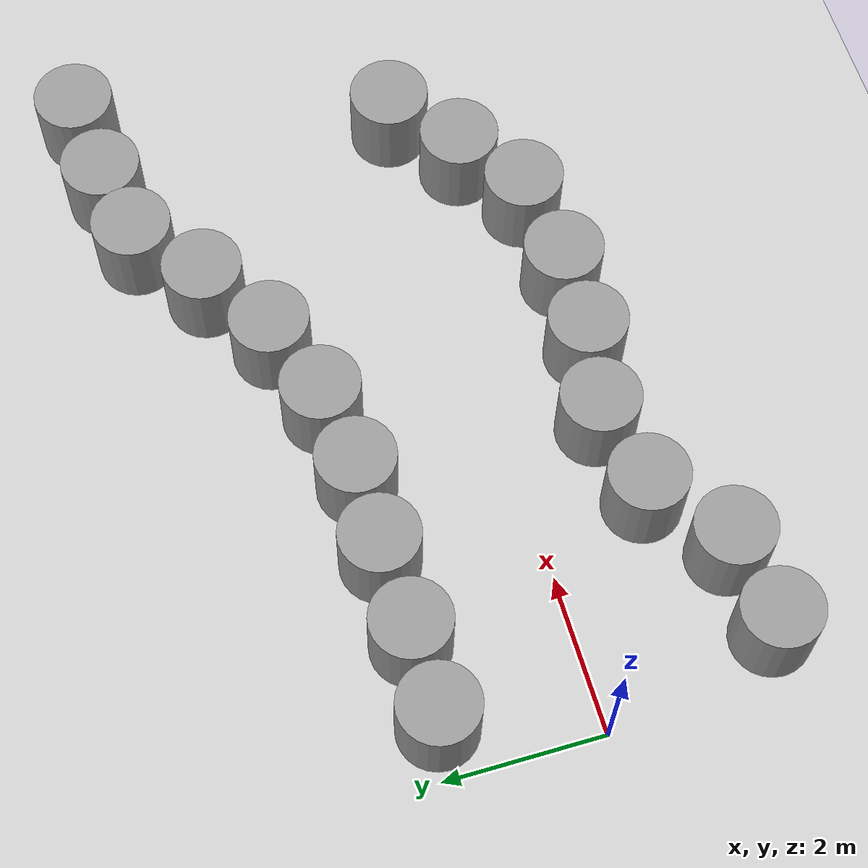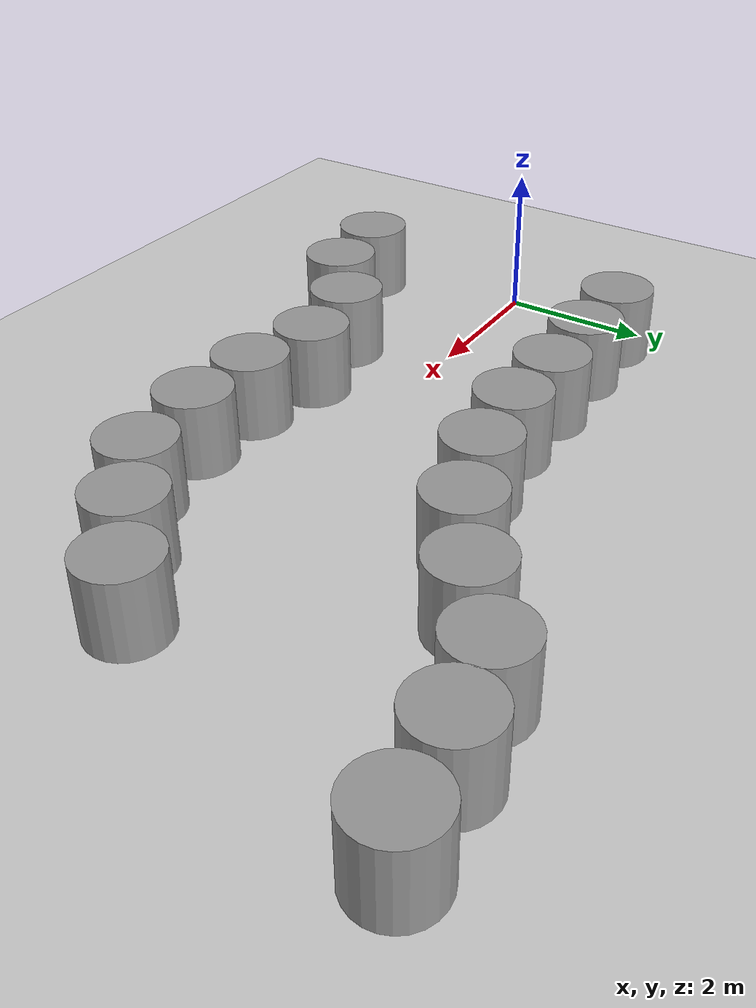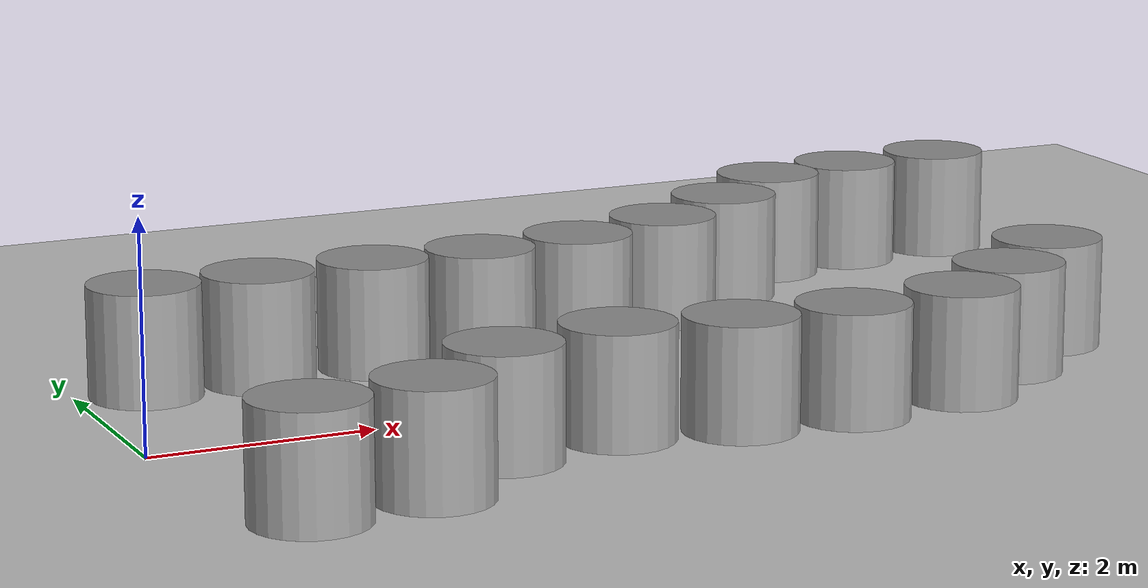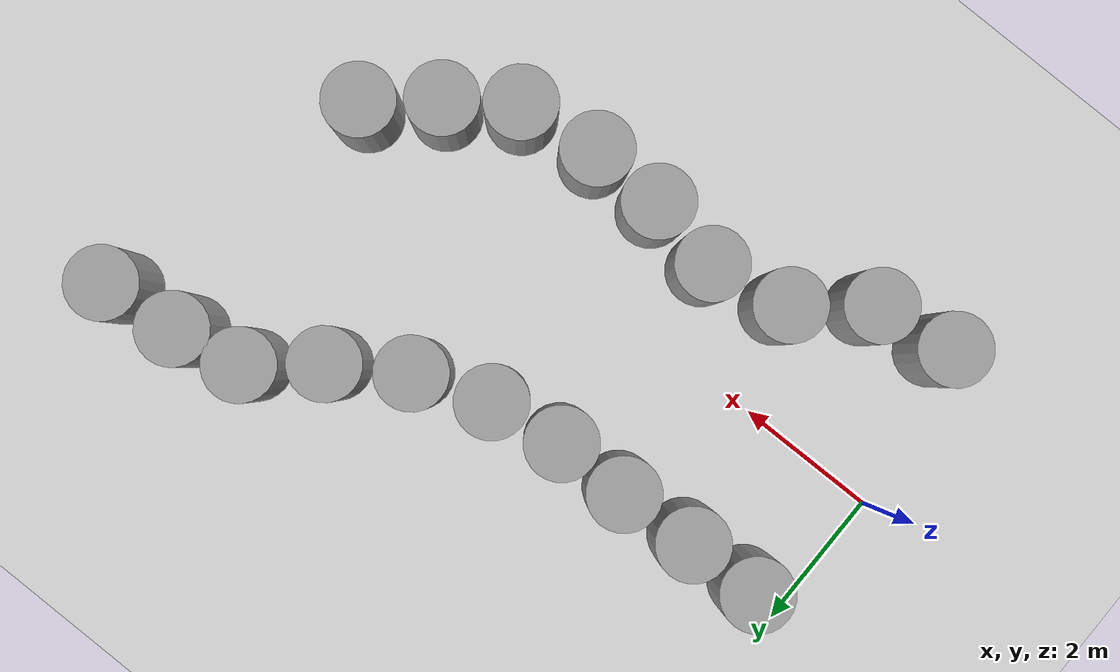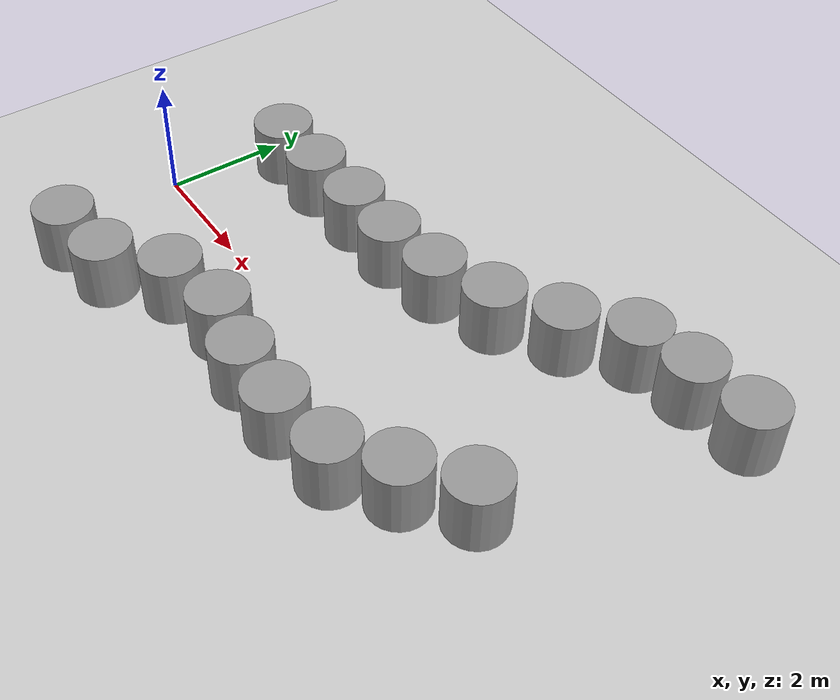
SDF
<sdf version="1.7">
 <world name="default">
  <model name="ground_plane">
   <static>1</static>
   <link name="link">
    <collision name="collision">
     <geometry><plane><normal>0 0 1</normal><size>100 100</size></plane></geometry>
     <surface>
      <contact><collide_bitmask>65535</collide_bitmask></contact>
      <friction><ode><mu>100</mu><mu2>50</mu2></ode></friction>
     </surface>
    </collision>
    <visual name="visual">
     <cast_shadows>0</cast_shadows>
     <geometry><plane><normal>0 0 1</normal><size>100 100</size></plane></geometry>
     <material>
      <script><uri>file://media/materials/scripts/gazebo.material</uri><name>Gazebo/Grey</name></script>
     </material>
    </visual>
   </link>
  </model>
  <model name="gasse_zylinder">
   <link name="link_0">
    <inertial>
     <mass>1</mass>
     <inertia><ixx>0.145833</ixx><ixy>0</ixy><ixz>0</ixz><iyy>0.145833</iyy><iyz>0</iyz><izz>0.125</izz></inertia>
    </inertial>
    <pose>-9.35991 0.82655 0 0 -0 0</pose>
    <visual name="visual">
     <geometry><cylinder><radius>0.5</radius><length>1</length></cylinder></geometry>
     <material>
      <lighting>1</lighting>
      <script><uri>file://media/materials/scripts/gazebo.material</uri><name>Gazebo/Grey</name></script>
      <shader type="pixel"/>
     </material>
    </visual>
    <collision name="collision">
     <geometry><cylinder><radius>0.5</radius><length>1</length></cylinder></geometry>
     <surface>
      <friction>
       <ode><mu>1</mu><mu2>1</mu2><fdir1>0 0 0</fdir1><slip1>0</slip1><slip2>0</slip2></ode>
       <torsional>
        <coefficient>1</coefficient>
        <patch_radius>0</patch_radius>
        <surface_radius>0</surface_radius>
        <use_patch_radius>1</use_patch_radius>
        <ode><slip>0</slip></ode>
       </torsional>
      </friction>
      <bounce><restitution_coefficient>0</restitution_coefficient><threshold>1e+06</threshold></bounce>
      <contact>
       <collide_without_contact>0</collide_without_contact>
       <collide_without_contact_bitmask>1</collide_without_contact_bitmask>
       <collide_bitmask>1</collide_bitmask>
       <ode>
        <soft_cfm>0</soft_cfm>
        <soft_erp>0.2</soft_erp>
        <kp>1e+13</kp>
        <kd>1</kd>
        <max_vel>0.01</max_vel>
        <min_depth>0</min_depth>
       </ode>
       <bullet>
        <split_impulse>1</split_impulse>
        <split_impulse_penetration_threshold>-0.01</split_impulse_penetration_threshold>
        <soft_cfm>0</soft_cfm>
        <soft_erp>0.2</soft_erp>
        <kp>1e+13</kp>
        <kd>1</kd>
       </bullet>
      </contact>
     </surface>
    </collision>
   </link>
   <link name="link_1">
    <inertial>
     <mass>1</mass>
     <inertia><ixx>0.145833</ixx><ixy>0</ixy><ixz>0</ixz><iyy>0.145833</iyy><iyz>0</iyz><izz>0.125</izz></inertia>
    </inertial>
    <pose>-8.31745 0.842697 0 0 -0 0</pose>
    <visual name="visual">
     <geometry><cylinder><radius>0.5</radius><length>1</length></cylinder></geometry>
     <material>
      <lighting>1</lighting>
      <script><uri>file://media/materials/scripts/gazebo.material</uri><name>Gazebo/Grey</name></script>
      <shader type="pixel"/>
     </material>
    </visual>
    <collision name="collision">
     <geometry><cylinder><radius>0.5</radius><length>1</length></cylinder></geometry>
     <surface>
      <friction>
       <ode><mu>1</mu><mu2>1</mu2><fdir1>0 0 0</fdir1><slip1>0</slip1><slip2>0</slip2></ode>
       <torsional>
        <coefficient>1</coefficient>
        <patch_radius>0</patch_radius>
        <surface_radius>0</surface_radius>
        <use_patch_radius>1</use_patch_radius>
        <ode><slip>0</slip></ode>
       </torsional>
      </friction>
      <bounce><restitution_coefficient>0</restitution_coefficient><threshold>1e+06</threshold></bounce>
      <contact>
       <collide_without_contact>0</collide_without_contact>
       <collide_without_contact_bitmask>1</collide_without_contact_bitmask>
       <collide_bitmask>1</collide_bitmask>
       <ode>
        <soft_cfm>0</soft_cfm>
        <soft_erp>0.2</soft_erp>
        <kp>1e+13</kp>
        <kd>1</kd>
        <max_vel>0.01</max_vel>
        <min_depth>0</min_depth>
       </ode>
       <bullet>
        <split_impulse>1</split_impulse>
        <split_impulse_penetration_threshold>-0.01</split_impulse_penetration_threshold>
        <soft_cfm>0</soft_cfm>
        <soft_erp>0.2</soft_erp>
        <kp>1e+13</kp>
        <kd>1</kd>
       </bullet>
      </contact>
     </surface>
    </collision>
   </link>
   <link name="link_12">
    <inertial>
     <mass>1</mass>
     <inertia><ixx>0.145833</ixx><ixy>0</ixy><ixz>0</ixz><iyy>0.145833</iyy><iyz>0</iyz><izz>0.125</izz></inertia>
    </inertial>
    <pose>-9.37316 -3.22378 0 0 -0 0</pose>
    <visual name="visual">
     <geometry><cylinder><radius>0.5</radius><length>1</length></cylinder></geometry>
     <material>
      <lighting>1</lighting>
      <script><uri>file://media/materials/scripts/gazebo.material</uri><name>Gazebo/Grey</name></script>
      <shader type="pixel"/>
     </material>
    </visual>
    <collision name="collision">
     <geometry><cylinder><radius>0.5</radius><length>1</length></cylinder></geometry>
     <surface>
      <friction>
       <ode><mu>1</mu><mu2>1</mu2><fdir1>0 0 0</fdir1><slip1>0</slip1><slip2>0</slip2></ode>
       <torsional>
        <coefficient>1</coefficient>
        <patch_radius>0</patch_radius>
        <surface_radius>0</surface_radius>
        <use_patch_radius>1</use_patch_radius>
        <ode><slip>0</slip></ode>
       </torsional>
      </friction>
      <bounce><restitution_coefficient>0</restitution_coefficient><threshold>1e+06</threshold></bounce>
      <contact>
       <collide_without_contact>0</collide_without_contact>
       <collide_without_contact_bitmask>1</collide_without_contact_bitmask>
       <collide_bitmask>1</collide_bitmask>
       <ode>
        <soft_cfm>0</soft_cfm>
        <soft_erp>0.2</soft_erp>
        <kp>1e+13</kp>
        <kd>1</kd>
        <max_vel>0.01</max_vel>
        <min_depth>0</min_depth>
       </ode>
       <bullet>
        <split_impulse>1</split_impulse>
        <split_impulse_penetration_threshold>-0.01</split_impulse_penetration_threshold>
        <soft_cfm>0</soft_cfm>
        <soft_erp>0.2</soft_erp>
        <kp>1e+13</kp>
        <kd>1</kd>
       </bullet>
      </contact>
     </surface>
    </collision>
   </link>
   <link name="link_13">
    <inertial>
     <mass>1</mass>
     <inertia><ixx>0.145833</ixx><ixy>0</ixy><ixz>0</ixz><iyy>0.145833</iyy><iyz>0</iyz><izz>0.125</izz></inertia>
    </inertial>
    <pose>-8.28443 -3.06836 0 0 -0 0</pose>
    <visual name="visual">
     <geometry><cylinder><radius>0.5</radius><length>1</length></cylinder></geometry>
     <material>
      <lighting>1</lighting>
      <script><uri>file://media/materials/scripts/gazebo.material</uri><name>Gazebo/Grey</name></script>
      <shader type="pixel"/>
     </material>
    </visual>
    <collision name="collision">
     <geometry><cylinder><radius>0.5</radius><length>1</length></cylinder></geometry>
     <surface>
      <friction>
       <ode><mu>1</mu><mu2>1</mu2><fdir1>0 0 0</fdir1><slip1>0</slip1><slip2>0</slip2></ode>
       <torsional>
        <coefficient>1</coefficient>
        <patch_radius>0</patch_radius>
        <surface_radius>0</surface_radius>
        <use_patch_radius>1</use_patch_radius>
        <ode><slip>0</slip></ode>
       </torsional>
      </friction>
      <bounce><restitution_coefficient>0</restitution_coefficient><threshold>1e+06</threshold></bounce>
      <contact>
       <collide_without_contact>0</collide_without_contact>
       <collide_without_contact_bitmask>1</collide_without_contact_bitmask>
       <collide_bitmask>1</collide_bitmask>
       <ode>
        <soft_cfm>0</soft_cfm>
        <soft_erp>0.2</soft_erp>
        <kp>1e+13</kp>
        <kd>1</kd>
        <max_vel>0.01</max_vel>
        <min_depth>0</min_depth>
       </ode>
       <bullet>
        <split_impulse>1</split_impulse>
        <split_impulse_penetration_threshold>-0.01</split_impulse_penetration_threshold>
        <soft_cfm>0</soft_cfm>
        <soft_erp>0.2</soft_erp>
        <kp>1e+13</kp>
        <kd>1</kd>
       </bullet>
      </contact>
     </surface>
    </collision>
   </link>
   <link name="link_14">
    <inertial>
     <mass>1</mass>
     <inertia><ixx>0.145833</ixx><ixy>0</ixy><ixz>0</ixz><iyy>0.145833</iyy><iyz>0</iyz><izz>0.125</izz></inertia>
    </inertial>
    <pose>-7.3678 -2.33615 0 0 -0 0</pose>
    <visual name="visual">
     <geometry><cylinder><radius>0.5</radius><length>1</length></cylinder></geometry>
     <material>
      <lighting>1</lighting>
      <script><uri>file://media/materials/scripts/gazebo.material</uri><name>Gazebo/Grey</name></script>
      <shader type="pixel"/>
     </material>
    </visual>
    <collision name="collision">
     <geometry><cylinder><radius>0.5</radius><length>1</length></cylinder></geometry>
     <surface>
      <friction>
       <ode><mu>1</mu><mu2>1</mu2><fdir1>0 0 0</fdir1><slip1>0</slip1><slip2>0</slip2></ode>
       <torsional>
        <coefficient>1</coefficient>
        <patch_radius>0</patch_radius>
        <surface_radius>0</surface_radius>
        <use_patch_radius>1</use_patch_radius>
        <ode><slip>0</slip></ode>
       </torsional>
      </friction>
      <bounce><restitution_coefficient>0</restitution_coefficient><threshold>1e+06</threshold></bounce>
      <contact>
       <collide_without_contact>0</collide_without_contact>
       <collide_without_contact_bitmask>1</collide_without_contact_bitmask>
       <collide_bitmask>1</collide_bitmask>
       <ode>
        <soft_cfm>0</soft_cfm>
        <soft_erp>0.2</soft_erp>
        <kp>1e+13</kp>
        <kd>1</kd>
        <max_vel>0.01</max_vel>
        <min_depth>0</min_depth>
       </ode>
       <bullet>
        <split_impulse>1</split_impulse>
        <split_impulse_penetration_threshold>-0.01</split_impulse_penetration_threshold>
        <soft_cfm>0</soft_cfm>
        <soft_erp>0.2</soft_erp>
        <kp>1e+13</kp>
        <kd>1</kd>
       </bullet>
      </contact>
     </surface>
    </collision>
   </link>
   <link name="link_15">
    <inertial>
     <mass>1</mass>
     <inertia><ixx>0.145833</ixx><ixy>0</ixy><ixz>0</ixz><iyy>0.145833</iyy><iyz>0</iyz><izz>0.125</izz></inertia>
    </inertial>
    <pose>-6.25209 -2.12005 0 0 -0 0</pose>
    <visual name="visual">
     <geometry><cylinder><radius>0.5</radius><length>1</length></cylinder></geometry>
     <material>
      <lighting>1</lighting>
      <script><uri>file://media/materials/scripts/gazebo.material</uri><name>Gazebo/Grey</name></script>
      <shader type="pixel"/>
     </material>
    </visual>
    <collision name="collision">
     <geometry><cylinder><radius>0.5</radius><length>1</length></cylinder></geometry>
     <surface>
      <friction>
       <ode><mu>1</mu><mu2>1</mu2><fdir1>0 0 0</fdir1><slip1>0</slip1><slip2>0</slip2></ode>
       <torsional>
        <coefficient>1</coefficient>
        <patch_radius>0</patch_radius>
        <surface_radius>0</surface_radius>
        <use_patch_radius>1</use_patch_radius>
        <ode><slip>0</slip></ode>
       </torsional>
      </friction>
      <bounce><restitution_coefficient>0</restitution_coefficient><threshold>1e+06</threshold></bounce>
      <contact>
       <collide_without_contact>0</collide_without_contact>
       <collide_without_contact_bitmask>1</collide_without_contact_bitmask>
       <collide_bitmask>1</collide_bitmask>
       <ode>
        <soft_cfm>0</soft_cfm>
        <soft_erp>0.2</soft_erp>
        <kp>1e+13</kp>
        <kd>1</kd>
        <max_vel>0.01</max_vel>
        <min_depth>0</min_depth>
       </ode>
       <bullet>
        <split_impulse>1</split_impulse>
        <split_impulse_penetration_threshold>-0.01</split_impulse_penetration_threshold>
        <soft_cfm>0</soft_cfm>
        <soft_erp>0.2</soft_erp>
        <kp>1e+13</kp>
        <kd>1</kd>
       </bullet>
      </contact>
     </surface>
    </collision>
   </link>
   <link name="link_16">
    <inertial>
     <mass>1</mass>
     <inertia><ixx>0.145833</ixx><ixy>0</ixy><ixz>0</ixz><iyy>0.145833</iyy><iyz>0</iyz><izz>0.125</izz></inertia>
    </inertial>
    <pose>-5.21227 -2.31195 0 0 -0 0</pose>
    <visual name="visual">
     <geometry><cylinder><radius>0.5</radius><length>1</length></cylinder></geometry>
     <material>
      <lighting>1</lighting>
      <script><uri>file://media/materials/scripts/gazebo.material</uri><name>Gazebo/Grey</name></script>
      <shader type="pixel"/>
     </material>
    </visual>
    <collision name="collision">
     <geometry><cylinder><radius>0.5</radius><length>1</length></cylinder></geometry>
     <surface>
      <friction>
       <ode><mu>1</mu><mu2>1</mu2><fdir1>0 0 0</fdir1><slip1>0</slip1><slip2>0</slip2></ode>
       <torsional>
        <coefficient>1</coefficient>
        <patch_radius>0</patch_radius>
        <surface_radius>0</surface_radius>
        <use_patch_radius>1</use_patch_radius>
        <ode><slip>0</slip></ode>
       </torsional>
      </friction>
      <bounce><restitution_coefficient>0</restitution_coefficient><threshold>1e+06</threshold></bounce>
      <contact>
       <collide_without_contact>0</collide_without_contact>
       <collide_without_contact_bitmask>1</collide_without_contact_bitmask>
       <collide_bitmask>1</collide_bitmask>
       <ode>
        <soft_cfm>0</soft_cfm>
        <soft_erp>0.2</soft_erp>
        <kp>1e+13</kp>
        <kd>1</kd>
        <max_vel>0.01</max_vel>
        <min_depth>0</min_depth>
       </ode>
       <bullet>
        <split_impulse>1</split_impulse>
        <split_impulse_penetration_threshold>-0.01</split_impulse_penetration_threshold>
        <soft_cfm>0</soft_cfm>
        <soft_erp>0.2</soft_erp>
        <kp>1e+13</kp>
        <kd>1</kd>
       </bullet>
      </contact>
     </surface>
    </collision>
   </link>
   <link name="link_17">
    <inertial>
     <mass>1</mass>
     <inertia><ixx>0.145833</ixx><ixy>0</ixy><ixz>0</ixz><iyy>0.145833</iyy><iyz>0</iyz><izz>0.125</izz></inertia>
    </inertial>
    <pose>-4.16804 -2.34618 0 0 -0 0</pose>
    <visual name="visual">
     <geometry><cylinder><radius>0.5</radius><length>1</length></cylinder></geometry>
     <material>
      <lighting>1</lighting>
      <script><uri>file://media/materials/scripts/gazebo.material</uri><name>Gazebo/Grey</name></script>
      <shader type="pixel"/>
     </material>
    </visual>
    <collision name="collision">
     <geometry><cylinder><radius>0.5</radius><length>1</length></cylinder></geometry>
     <surface>
      <friction>
       <ode><mu>1</mu><mu2>1</mu2><fdir1>0 0 0</fdir1><slip1>0</slip1><slip2>0</slip2></ode>
       <torsional>
        <coefficient>1</coefficient>
        <patch_radius>0</patch_radius>
        <surface_radius>0</surface_radius>
        <use_patch_radius>1</use_patch_radius>
        <ode><slip>0</slip></ode>
       </torsional>
      </friction>
      <bounce><restitution_coefficient>0</restitution_coefficient><threshold>1e+06</threshold></bounce>
      <contact>
       <collide_without_contact>0</collide_without_contact>
       <collide_without_contact_bitmask>1</collide_without_contact_bitmask>
       <collide_bitmask>1</collide_bitmask>
       <ode>
        <soft_cfm>0</soft_cfm>
        <soft_erp>0.2</soft_erp>
        <kp>1e+13</kp>
        <kd>1</kd>
        <max_vel>0.01</max_vel>
        <min_depth>0</min_depth>
       </ode>
       <bullet>
        <split_impulse>1</split_impulse>
        <split_impulse_penetration_threshold>-0.01</split_impulse_penetration_threshold>
        <soft_cfm>0</soft_cfm>
        <soft_erp>0.2</soft_erp>
        <kp>1e+13</kp>
        <kd>1</kd>
       </bullet>
      </contact>
     </surface>
    </collision>
   </link>
   <link name="link_18">
    <inertial>
     <mass>1</mass>
     <inertia><ixx>0.145833</ixx><ixy>0</ixy><ixz>0</ixz><iyy>0.145833</iyy><iyz>0</iyz><izz>0.125</izz></inertia>
    </inertial>
    <pose>-3.02576 -2.19398 0 0 -0 0</pose>
    <visual name="visual">
     <geometry><cylinder><radius>0.5</radius><length>1</length></cylinder></geometry>
     <material>
      <lighting>1</lighting>
      <script><uri>file://media/materials/scripts/gazebo.material</uri><name>Gazebo/Grey</name></script>
      <shader type="pixel"/>
     </material>
    </visual>
    <collision name="collision">
     <geometry><cylinder><radius>0.5</radius><length>1</length></cylinder></geometry>
     <surface>
      <friction>
       <ode><mu>1</mu><mu2>1</mu2><fdir1>0 0 0</fdir1><slip1>0</slip1><slip2>0</slip2></ode>
       <torsional>
        <coefficient>1</coefficient>
        <patch_radius>0</patch_radius>
        <surface_radius>0</surface_radius>
        <use_patch_radius>1</use_patch_radius>
        <ode><slip>0</slip></ode>
       </torsional>
      </friction>
      <bounce><restitution_coefficient>0</restitution_coefficient><threshold>1e+06</threshold></bounce>
      <contact>
       <collide_without_contact>0</collide_without_contact>
       <collide_without_contact_bitmask>1</collide_without_contact_bitmask>
       <collide_bitmask>1</collide_bitmask>
       <ode>
        <soft_cfm>0</soft_cfm>
        <soft_erp>0.2</soft_erp>
        <kp>1e+13</kp>
        <kd>1</kd>
        <max_vel>0.01</max_vel>
        <min_depth>0</min_depth>
       </ode>
       <bullet>
        <split_impulse>1</split_impulse>
        <split_impulse_penetration_threshold>-0.01</split_impulse_penetration_threshold>
        <soft_cfm>0</soft_cfm>
        <soft_erp>0.2</soft_erp>
        <kp>1e+13</kp>
        <kd>1</kd>
       </bullet>
      </contact>
     </surface>
    </collision>
   </link>
   <link name="link_19">
    <inertial>
     <mass>1</mass>
     <inertia><ixx>0.145833</ixx><ixy>0</ixy><ixz>0</ixz><iyy>0.145833</iyy><iyz>0</iyz><izz>0.125</izz></inertia>
    </inertial>
    <pose>-2.19618 -1.59246 0 0 -0 0</pose>
    <visual name="visual">
     <geometry><cylinder><radius>0.5</radius><length>1</length></cylinder></geometry>
     <material>
      <lighting>1</lighting>
      <script><uri>file://media/materials/scripts/gazebo.material</uri><name>Gazebo/Grey</name></script>
      <shader type="pixel"/>
     </material>
    </visual>
    <collision name="collision">
     <geometry><cylinder><radius>0.5</radius><length>1</length></cylinder></geometry>
     <surface>
      <friction>
       <ode><mu>1</mu><mu2>1</mu2><fdir1>0 0 0</fdir1><slip1>0</slip1><slip2>0</slip2></ode>
       <torsional>
        <coefficient>1</coefficient>
        <patch_radius>0</patch_radius>
        <surface_radius>0</surface_radius>
        <use_patch_radius>1</use_patch_radius>
        <ode><slip>0</slip></ode>
       </torsional>
      </friction>
      <bounce><restitution_coefficient>0</restitution_coefficient><threshold>1e+06</threshold></bounce>
      <contact>
       <collide_without_contact>0</collide_without_contact>
       <collide_without_contact_bitmask>1</collide_without_contact_bitmask>
       <collide_bitmask>1</collide_bitmask>
       <ode>
        <soft_cfm>0</soft_cfm>
        <soft_erp>0.2</soft_erp>
        <kp>1e+13</kp>
        <kd>1</kd>
        <max_vel>0.01</max_vel>
        <min_depth>0</min_depth>
       </ode>
       <bullet>
        <split_impulse>1</split_impulse>
        <split_impulse_penetration_threshold>-0.01</split_impulse_penetration_threshold>
        <soft_cfm>0</soft_cfm>
        <soft_erp>0.2</soft_erp>
        <kp>1e+13</kp>
        <kd>1</kd>
       </bullet>
      </contact>
     </surface>
    </collision>
   </link>
   <link name="link_2">
    <inertial>
     <mass>1</mass>
     <inertia><ixx>0.145833</ixx><ixy>0</ixy><ixz>0</ixz><iyy>0.145833</iyy><iyz>0</iyz><izz>0.125</izz></inertia>
    </inertial>
    <pose>-7.22171 0.898803 0 0 -0 0</pose>
    <visual name="visual">
     <geometry><cylinder><radius>0.5</radius><length>1</length></cylinder></geometry>
     <material>
      <lighting>1</lighting>
      <script><uri>file://media/materials/scripts/gazebo.material</uri><name>Gazebo/Grey</name></script>
      <shader type="pixel"/>
     </material>
    </visual>
    <collision name="collision">
     <geometry><cylinder><radius>0.5</radius><length>1</length></cylinder></geometry>
     <surface>
      <friction>
       <ode><mu>1</mu><mu2>1</mu2><fdir1>0 0 0</fdir1><slip1>0</slip1><slip2>0</slip2></ode>
       <torsional>
        <coefficient>1</coefficient>
        <patch_radius>0</patch_radius>
        <surface_radius>0</surface_radius>
        <use_patch_radius>1</use_patch_radius>
        <ode><slip>0</slip></ode>
       </torsional>
      </friction>
      <bounce><restitution_coefficient>0</restitution_coefficient><threshold>1e+06</threshold></bounce>
      <contact>
       <collide_without_contact>0</collide_without_contact>
       <collide_without_contact_bitmask>1</collide_without_contact_bitmask>
       <collide_bitmask>1</collide_bitmask>
       <ode>
        <soft_cfm>0</soft_cfm>
        <soft_erp>0.2</soft_erp>
        <kp>1e+13</kp>
        <kd>1</kd>
        <max_vel>0.01</max_vel>
        <min_depth>0</min_depth>
       </ode>
       <bullet>
        <split_impulse>1</split_impulse>
        <split_impulse_penetration_threshold>-0.01</split_impulse_penetration_threshold>
        <soft_cfm>0</soft_cfm>
        <soft_erp>0.2</soft_erp>
        <kp>1e+13</kp>
        <kd>1</kd>
       </bullet>
      </contact>
     </surface>
    </collision>
   </link>
   <link name="link_20">
    <inertial>
     <mass>1</mass>
     <inertia><ixx>0.145833</ixx><ixy>0</ixy><ixz>0</ixz><iyy>0.145833</iyy><iyz>0</iyz><izz>0.125</izz></inertia>
    </inertial>
    <pose>-1.37016 -0.900286 0 0 -0 0</pose>
    <visual name="visual">
     <geometry><cylinder><radius>0.5</radius><length>1</length></cylinder></geometry>
     <material>
      <lighting>1</lighting>
      <script><uri>file://media/materials/scripts/gazebo.material</uri><name>Gazebo/Grey</name></script>
      <shader type="pixel"/>
     </material>
    </visual>
    <collision name="collision">
     <geometry><cylinder><radius>0.5</radius><length>1</length></cylinder></geometry>
     <surface>
      <friction>
       <ode><mu>1</mu><mu2>1</mu2><fdir1>0 0 0</fdir1><slip1>0</slip1><slip2>0</slip2></ode>
       <torsional>
        <coefficient>1</coefficient>
        <patch_radius>0</patch_radius>
        <surface_radius>0</surface_radius>
        <use_patch_radius>1</use_patch_radius>
        <ode><slip>0</slip></ode>
       </torsional>
      </friction>
      <bounce><restitution_coefficient>0</restitution_coefficient><threshold>1e+06</threshold></bounce>
      <contact>
       <collide_without_contact>0</collide_without_contact>
       <collide_without_contact_bitmask>1</collide_without_contact_bitmask>
       <collide_bitmask>1</collide_bitmask>
       <ode>
        <soft_cfm>0</soft_cfm>
        <soft_erp>0.2</soft_erp>
        <kp>1e+13</kp>
        <kd>1</kd>
        <max_vel>0.01</max_vel>
        <min_depth>0</min_depth>
       </ode>
       <bullet>
        <split_impulse>1</split_impulse>
        <split_impulse_penetration_threshold>-0.01</split_impulse_penetration_threshold>
        <soft_cfm>0</soft_cfm>
        <soft_erp>0.2</soft_erp>
        <kp>1e+13</kp>
        <kd>1</kd>
       </bullet>
      </contact>
     </surface>
    </collision>
   </link>
   <link name="link_3">
    <inertial>
     <mass>1</mass>
     <inertia><ixx>0.145833</ixx><ixy>0</ixy><ixz>0</ixz><iyy>0.145833</iyy><iyz>0</iyz><izz>0.125</izz></inertia>
    </inertial>
    <pose>-6.19151 0.896374 0 0 -0 0</pose>
    <visual name="visual">
     <geometry><cylinder><radius>0.5</radius><length>1</length></cylinder></geometry>
     <material>
      <lighting>1</lighting>
      <script><uri>file://media/materials/scripts/gazebo.material</uri><name>Gazebo/Grey</name></script>
      <shader type="pixel"/>
     </material>
    </visual>
    <collision name="collision">
     <geometry><cylinder><radius>0.5</radius><length>1</length></cylinder></geometry>
     <surface>
      <friction>
       <ode><mu>1</mu><mu2>1</mu2><fdir1>0 0 0</fdir1><slip1>0</slip1><slip2>0</slip2></ode>
       <torsional>
        <coefficient>1</coefficient>
        <patch_radius>0</patch_radius>
        <surface_radius>0</surface_radius>
        <use_patch_radius>1</use_patch_radius>
        <ode><slip>0</slip></ode>
       </torsional>
      </friction>
      <bounce><restitution_coefficient>0</restitution_coefficient><threshold>1e+06</threshold></bounce>
      <contact>
       <collide_without_contact>0</collide_without_contact>
       <collide_without_contact_bitmask>1</collide_without_contact_bitmask>
       <collide_bitmask>1</collide_bitmask>
       <ode>
        <soft_cfm>0</soft_cfm>
        <soft_erp>0.2</soft_erp>
        <kp>1e+13</kp>
        <kd>1</kd>
        <max_vel>0.01</max_vel>
        <min_depth>0</min_depth>
       </ode>
       <bullet>
        <split_impulse>1</split_impulse>
        <split_impulse_penetration_threshold>-0.01</split_impulse_penetration_threshold>
        <soft_cfm>0</soft_cfm>
        <soft_erp>0.2</soft_erp>
        <kp>1e+13</kp>
        <kd>1</kd>
       </bullet>
      </contact>
     </surface>
    </collision>
   </link>
   <link name="link_4">
    <inertial>
     <mass>1</mass>
     <inertia><ixx>0.145833</ixx><ixy>0</ixy><ixz>0</ixz><iyy>0.145833</iyy><iyz>0</iyz><izz>0.125</izz></inertia>
    </inertial>
    <pose>-5.15737 1.04631 0 0 -0 0</pose>
    <visual name="visual">
     <geometry><cylinder><radius>0.5</radius><length>1</length></cylinder></geometry>
     <material>
      <lighting>1</lighting>
      <script><uri>file://media/materials/scripts/gazebo.material</uri><name>Gazebo/Grey</name></script>
      <shader type="pixel"/>
     </material>
    </visual>
    <collision name="collision">
     <geometry><cylinder><radius>0.5</radius><length>1</length></cylinder></geometry>
     <surface>
      <friction>
       <ode><mu>1</mu><mu2>1</mu2><fdir1>0 0 0</fdir1><slip1>0</slip1><slip2>0</slip2></ode>
       <torsional>
        <coefficient>1</coefficient>
        <patch_radius>0</patch_radius>
        <surface_radius>0</surface_radius>
        <use_patch_radius>1</use_patch_radius>
        <ode><slip>0</slip></ode>
       </torsional>
      </friction>
      <bounce><restitution_coefficient>0</restitution_coefficient><threshold>1e+06</threshold></bounce>
      <contact>
       <collide_without_contact>0</collide_without_contact>
       <collide_without_contact_bitmask>1</collide_without_contact_bitmask>
       <collide_bitmask>1</collide_bitmask>
       <ode>
        <soft_cfm>0</soft_cfm>
        <soft_erp>0.2</soft_erp>
        <kp>1e+13</kp>
        <kd>1</kd>
        <max_vel>0.01</max_vel>
        <min_depth>0</min_depth>
       </ode>
       <bullet>
        <split_impulse>1</split_impulse>
        <split_impulse_penetration_threshold>-0.01</split_impulse_penetration_threshold>
        <soft_cfm>0</soft_cfm>
        <soft_erp>0.2</soft_erp>
        <kp>1e+13</kp>
        <kd>1</kd>
       </bullet>
      </contact>
     </surface>
    </collision>
   </link>
   <link name="link_5">
    <inertial>
     <mass>1</mass>
     <inertia><ixx>0.145833</ixx><ixy>0</ixy><ixz>0</ixz><iyy>0.145833</iyy><iyz>0</iyz><izz>0.125</izz></inertia>
    </inertial>
    <pose>-4.12102 1.41024 0 0 -0 0</pose>
    <visual name="visual">
     <geometry><cylinder><radius>0.5</radius><length>1</length></cylinder></geometry>
     <material>
      <lighting>1</lighting>
      <script><uri>file://media/materials/scripts/gazebo.material</uri><name>Gazebo/Grey</name></script>
      <shader type="pixel"/>
     </material>
    </visual>
    <collision name="collision">
     <geometry><cylinder><radius>0.5</radius><length>1</length></cylinder></geometry>
     <surface>
      <friction>
       <ode><mu>1</mu><mu2>1</mu2><fdir1>0 0 0</fdir1><slip1>0</slip1><slip2>0</slip2></ode>
       <torsional>
        <coefficient>1</coefficient>
        <patch_radius>0</patch_radius>
        <surface_radius>0</surface_radius>
        <use_patch_radius>1</use_patch_radius>
        <ode><slip>0</slip></ode>
       </torsional>
      </friction>
      <bounce><restitution_coefficient>0</restitution_coefficient><threshold>1e+06</threshold></bounce>
      <contact>
       <collide_without_contact>0</collide_without_contact>
       <collide_without_contact_bitmask>1</collide_without_contact_bitmask>
       <collide_bitmask>1</collide_bitmask>
       <ode>
        <soft_cfm>0</soft_cfm>
        <soft_erp>0.2</soft_erp>
        <kp>1e+13</kp>
        <kd>1</kd>
        <max_vel>0.01</max_vel>
        <min_depth>0</min_depth>
       </ode>
       <bullet>
        <split_impulse>1</split_impulse>
        <split_impulse_penetration_threshold>-0.01</split_impulse_penetration_threshold>
        <soft_cfm>0</soft_cfm>
        <soft_erp>0.2</soft_erp>
        <kp>1e+13</kp>
        <kd>1</kd>
       </bullet>
      </contact>
     </surface>
    </collision>
   </link>
   <link name="link_6">
    <inertial>
     <mass>1</mass>
     <inertia><ixx>0.145833</ixx><ixy>0</ixy><ixz>0</ixz><iyy>0.145833</iyy><iyz>0</iyz><izz>0.125</izz></inertia>
    </inertial>
    <pose>-3.17727 2.01814 0 0 -0 0</pose>
    <visual name="visual">
     <geometry><cylinder><radius>0.5</radius><length>1</length></cylinder></geometry>
     <material>
      <lighting>1</lighting>
      <script><uri>file://media/materials/scripts/gazebo.material</uri><name>Gazebo/Grey</name></script>
      <shader type="pixel"/>
     </material>
    </visual>
    <collision name="collision">
     <geometry><cylinder><radius>0.5</radius><length>1</length></cylinder></geometry>
     <surface>
      <friction>
       <ode><mu>1</mu><mu2>1</mu2><fdir1>0 0 0</fdir1><slip1>0</slip1><slip2>0</slip2></ode>
       <torsional>
        <coefficient>1</coefficient>
        <patch_radius>0</patch_radius>
        <surface_radius>0</surface_radius>
        <use_patch_radius>1</use_patch_radius>
        <ode><slip>0</slip></ode>
       </torsional>
      </friction>
      <bounce><restitution_coefficient>0</restitution_coefficient><threshold>1e+06</threshold></bounce>
      <contact>
       <collide_without_contact>0</collide_without_contact>
       <collide_without_contact_bitmask>1</collide_without_contact_bitmask>
       <collide_bitmask>1</collide_bitmask>
       <ode>
        <soft_cfm>0</soft_cfm>
        <soft_erp>0.2</soft_erp>
        <kp>1e+13</kp>
        <kd>1</kd>
        <max_vel>0.01</max_vel>
        <min_depth>0</min_depth>
       </ode>
       <bullet>
        <split_impulse>1</split_impulse>
        <split_impulse_penetration_threshold>-0.01</split_impulse_penetration_threshold>
        <soft_cfm>0</soft_cfm>
        <soft_erp>0.2</soft_erp>
        <kp>1e+13</kp>
        <kd>1</kd>
       </bullet>
      </contact>
     </surface>
    </collision>
   </link>
   <link name="link_7">
    <inertial>
     <mass>1</mass>
     <inertia><ixx>0.145833</ixx><ixy>0</ixy><ixz>0</ixz><iyy>0.145833</iyy><iyz>0</iyz><izz>0.125</izz></inertia>
    </inertial>
    <pose>-2.33045 2.71655 0 0 -0 0</pose>
    <visual name="visual">
     <geometry><cylinder><radius>0.5</radius><length>1</length></cylinder></geometry>
     <material>
      <lighting>1</lighting>
      <script><uri>file://media/materials/scripts/gazebo.material</uri><name>Gazebo/Grey</name></script>
      <shader type="pixel"/>
     </material>
    </visual>
    <collision name="collision">
     <geometry><cylinder><radius>0.5</radius><length>1</length></cylinder></geometry>
     <surface>
      <friction>
       <ode><mu>1</mu><mu2>1</mu2><fdir1>0 0 0</fdir1><slip1>0</slip1><slip2>0</slip2></ode>
       <torsional>
        <coefficient>1</coefficient>
        <patch_radius>0</patch_radius>
        <surface_radius>0</surface_radius>
        <use_patch_radius>1</use_patch_radius>
        <ode><slip>0</slip></ode>
       </torsional>
      </friction>
      <bounce><restitution_coefficient>0</restitution_coefficient><threshold>1e+06</threshold></bounce>
      <contact>
       <collide_without_contact>0</collide_without_contact>
       <collide_without_contact_bitmask>1</collide_without_contact_bitmask>
       <collide_bitmask>1</collide_bitmask>
       <ode>
        <soft_cfm>0</soft_cfm>
        <soft_erp>0.2</soft_erp>
        <kp>1e+13</kp>
        <kd>1</kd>
        <max_vel>0.01</max_vel>
        <min_depth>0</min_depth>
       </ode>
       <bullet>
        <split_impulse>1</split_impulse>
        <split_impulse_penetration_threshold>-0.01</split_impulse_penetration_threshold>
        <soft_cfm>0</soft_cfm>
        <soft_erp>0.2</soft_erp>
        <kp>1e+13</kp>
        <kd>1</kd>
       </bullet>
      </contact>
     </surface>
    </collision>
   </link>
   <link name="link_8">
    <inertial>
     <mass>1</mass>
     <inertia><ixx>0.145833</ixx><ixy>0</ixy><ixz>0</ixz><iyy>0.145833</iyy><iyz>0</iyz><izz>0.125</izz></inertia>
    </inertial>
    <pose>-1.37048 2.89602 0 0 -0 0</pose>
    <visual name="visual">
     <geometry><cylinder><radius>0.5</radius><length>1</length></cylinder></geometry>
     <material>
      <lighting>1</lighting>
      <script><uri>file://media/materials/scripts/gazebo.material</uri><name>Gazebo/Grey</name></script>
      <shader type="pixel"/>
     </material>
    </visual>
    <collision name="collision">
     <geometry><cylinder><radius>0.5</radius><length>1</length></cylinder></geometry>
     <surface>
      <friction>
       <ode><mu>1</mu><mu2>1</mu2><fdir1>0 0 0</fdir1><slip1>0</slip1><slip2>0</slip2></ode>
       <torsional>
        <coefficient>1</coefficient>
        <patch_radius>0</patch_radius>
        <surface_radius>0</surface_radius>
        <use_patch_radius>1</use_patch_radius>
        <ode><slip>0</slip></ode>
       </torsional>
      </friction>
      <bounce><restitution_coefficient>0</restitution_coefficient><threshold>1e+06</threshold></bounce>
      <contact>
       <collide_without_contact>0</collide_without_contact>
       <collide_without_contact_bitmask>1</collide_without_contact_bitmask>
       <collide_bitmask>1</collide_bitmask>
       <ode>
        <soft_cfm>0</soft_cfm>
        <soft_erp>0.2</soft_erp>
        <kp>1e+13</kp>
        <kd>1</kd>
        <max_vel>0.01</max_vel>
        <min_depth>0</min_depth>
       </ode>
       <bullet>
        <split_impulse>1</split_impulse>
        <split_impulse_penetration_threshold>-0.01</split_impulse_penetration_threshold>
        <soft_cfm>0</soft_cfm>
        <soft_erp>0.2</soft_erp>
        <kp>1e+13</kp>
        <kd>1</kd>
       </bullet>
      </contact>
     </surface>
    </collision>
   </link>
   <link name="link_9">
    <inertial>
     <mass>1</mass>
     <inertia><ixx>0.145833</ixx><ixy>0</ixy><ixz>0</ixz><iyy>0.145833</iyy><iyz>0</iyz><izz>0.125</izz></inertia>
    </inertial>
    <pose>-0.289586 3.01078 0 0 -0 0</pose>
    <visual name="visual">
     <geometry><cylinder><radius>0.5</radius><length>1</length></cylinder></geometry>
     <material>
      <lighting>1</lighting>
      <script><uri>file://media/materials/scripts/gazebo.material</uri><name>Gazebo/Grey</name></script>
      <shader type="pixel"/>
     </material>
    </visual>
    <collision name="collision">
     <geometry><cylinder><radius>0.5</radius><length>1</length></cylinder></geometry>
     <surface>
      <friction>
       <ode><mu>1</mu><mu2>1</mu2><fdir1>0 0 0</fdir1><slip1>0</slip1><slip2>0</slip2></ode>
       <torsional>
        <coefficient>1</coefficient>
        <patch_radius>0</patch_radius>
        <surface_radius>0</surface_radius>
        <use_patch_radius>1</use_patch_radius>
        <ode><slip>0</slip></ode>
       </torsional>
      </friction>
      <bounce><restitution_coefficient>0</restitution_coefficient><threshold>1e+06</threshold></bounce>
      <contact>
       <collide_without_contact>0</collide_without_contact>
       <collide_without_contact_bitmask>1</collide_without_contact_bitmask>
       <collide_bitmask>1</collide_bitmask>
       <ode>
        <soft_cfm>0</soft_cfm>
        <soft_erp>0.2</soft_erp>
        <kp>1e+13</kp>
        <kd>1</kd>
        <max_vel>0.01</max_vel>
        <min_depth>0</min_depth>
       </ode>
       <bullet>
        <split_impulse>1</split_impulse>
        <split_impulse_penetration_threshold>-0.01</split_impulse_penetration_threshold>
        <soft_cfm>0</soft_cfm>
        <soft_erp>0.2</soft_erp>
        <kp>1e+13</kp>
        <kd>1</kd>
       </bullet>
      </contact>
     </surface>
    </collision>
   </link>
   <static>0</static>
   <pose>9.97032 1.02715 0.499979 -2e-06 2e-06 -0</pose>
  </model>
 </world>
</sdf>
